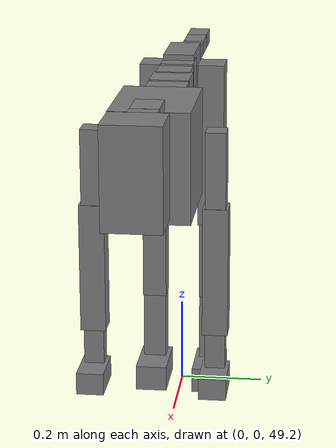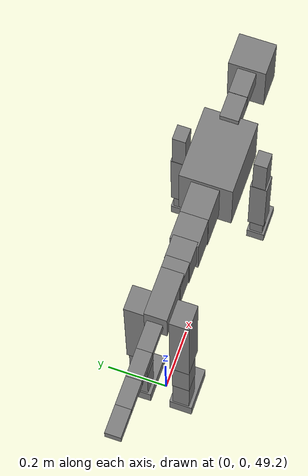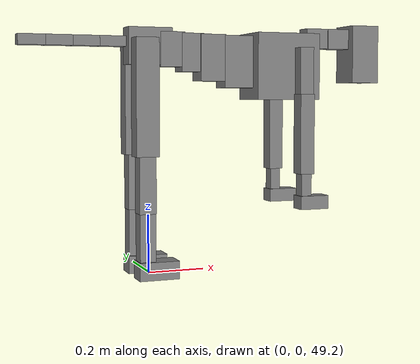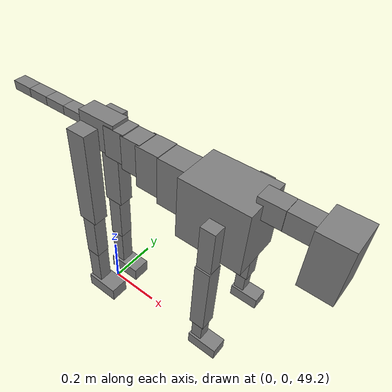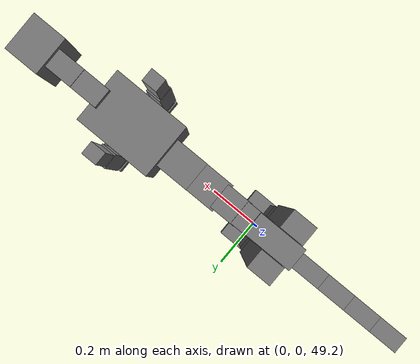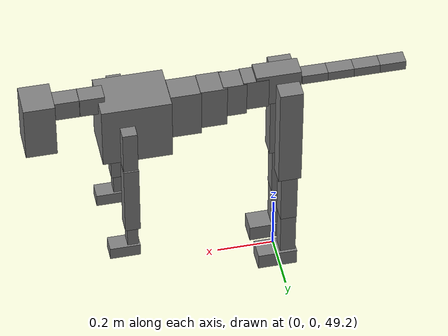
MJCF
<mujoco model="dog">

    <default>
        <joint armature="0.02" stiffness="1" damping="0.2" limited="true"/>
        <geom condim="3" friction="1 0.05 0.05" margin="0.01"/>
        <motor ctrllimited="true" ctrlrange="-1.0 1.0" forcelimited="true" gear="50"/>
    </default>

    <compiler inertiafromgeom="true" angle="radian"/>

    <option timestep="0.016" iterations="50" tolerance="1e-10" solver="Newton" jacobian="dense" cone="pyramidal"/>

    <size nconmax="20000" njmax="60000" nstack="5000000"/>
    <visual>
        <map force="0.1" zfar="30"/>
        <rgba haze="0.15 0.25 0.35 1"/>
        <quality shadowsize="2048"/>
        <global offwidth="800" offheight="800"/>
    </visual>

    <asset>
        <texture type="skybox" builtin="gradient" rgb1="0.3 0.5 0.7" rgb2="0 0 0" width="512" height="512"/>
        <texture name="texplane" type="2d" builtin="checker" rgb1=".2 .3 .4" rgb2=".1 0.15 0.2" width="512" height="512"
                 mark="cross" markrgb=".8 .8 .8"/>
        <texture name="texgeom" type="cube" builtin="flat" mark="cross" width="127" height="1278" rgb1="0.8 0.6 0.4"
                 rgb2="0.8 0.6 0.4" markrgb="1 1 1" random="0.01"/>

        <material name="matplane" reflectance="0.3" texture="texplane" texrepeat="1 1" texuniform="true"/>
        <material name="matgeom" texture="texgeom" texuniform="true" rgba="0.8 0.6 .4 1"/>
    </asset>

    <worldbody>
        <geom name="floor" pos="0 0 0" size="0 0 .25" type="plane" material="matplane" condim="3"/>

        <light directional="false" diffuse=".2 .2 .2" specular="0 0 0" pos="0 0 5" dir="0 0 -1" castshadow="false"/>
        <light mode="targetbodycom" target="torso" directional="false" diffuse=".8 .8 .8" specular="0.3 0.3 0.3"
               pos="0 0 4.0" dir="0 0 -1"/>

        <body name="root" pos="0 0 50">
            <freejoint name="root_1"/>
            <geom type="box" pos="0 0 -0.02" size="0.0774  0.0358  0.063" density="2030"/>

            <body name="spine1" pos="0.054 0 0">
                <joint name="spine1_y" axis="0 1 0" range="0 0.7" limited="true"/>
                <geom type="box" pos="0.02375 0 -0.03" size="0.04375  0.0375  0.05985" density="2030"/>

                <body name="spine2" pos="0.0612 0 0">
                    <joint name="spine2_y" axis="0 1 0" range="-0.15 0.15" limited="true"/>
                    <geom type="box" pos="0.03555  0  -0.04" size="0.04055  0.039  0.06615" density="2030"/>

                    <body name="spine3" pos="0.0730 0 0">
                        <joint name="spine3_y" axis="0 1 0" range="-0.15 0.15" limited="true"/>
                        <geom type="box" pos="0.03555  0  -0.057" size="0.04555  0.0445  0.081" density="2030"/>

                        <body name="spine4" pos="0.0780 0 0">
                            <joint name="spine4_y" axis="0 1 0" range="-0.15 0.15" limited="true"/>
                            <geom type="box" pos="0.05265  0  -0.07" size="0.05265  0.045  0.09135" density="2030"/>

                            <body name="torso" pos="0.1082 0 0">
                                <joint name="torso_y" axis="0 1 0" range="-0.15 0.15" limited="true"/>
                                <geom type="box" pos="0.11925  0  -0.085" size="0.11925  0.085  0.11745"
                                      density="2030"/>

                                <body name="neck1" pos="0.2160  0   0.0180">
                                    <joint name="neck1_y" axis="0 1 0" range="-1.2  -1" limited="true"/>
                                    <geom type="box" pos="0.0423  0  0" size="0.0423  0.03  0.036" density="2325"/>

                                    <body name="neck2" pos="0.0853  0  0">
                                        <joint name="neck2_y" axis="0 1 0" range="0.1  0" limited="true"/>
                                        <geom type="box" pos="0.0423  0  0" size="0.0423  0.03  0.036" density="2325"/>

                                        <body name="head" pos="0.0853  0  0">
                                            <joint name="head_y" axis="0 1 0" range="-0.3  -0.2" limited="true"/>
                                            <geom type="box" pos="0.0531  0  -0.055" size="0.0531  0.06  0.1044"
                                                  density="4030"/>

                                        </body>
                                    </body>
                                </body>

                                <body name="front_shoulder" pos="0.156  0   -0.0480">
                                    <joint name="front_shoulder_y" axis="0 1 0" range="-1 1.5" limited="true"/>
                                    <geom type="box" pos="0 0.13 -0.0680" size="0.0252  0.0215  0.0947" density="1158"/>
                                    <geom type="box" pos="0 -0.13 -0.0680" size="0.0252  0.0215  0.0947"
                                          density="1158"/>

                                    <body name="front_elbow" pos="0  0  -0.1360">
                                        <joint name="front_elbow_y" axis="0 1 0" range="-2 0" limited="true"/>
                                        <geom type="box" pos="0 0.13 -0.1391" size="0.0264  0.0270  0.1391"
                                              density="1081"/>
                                        <geom type="box" pos="0 -0.13 -0.1391" size="0.0264  0.0270  0.1391"
                                              density="1081"/>

                                        <body name="front_wrist" pos="0  0  -0.2782">
                                            <joint name="front_wrist_y" axis="0 1 0" range="-0.2 0" limited="true"/>
                                            <geom type="box" pos="0 0.13 -0.0460" size="0.0191  0.0212  0.0591"
                                                  density="1664"/>
                                            <geom type="box" pos="0 -0.13 -0.0460" size="0.0191  0.0212  0.0591"
                                                  density="1664"/>

                                            <body name="front_finger_end" pos="0  0  -0.0920">
                                                <joint name="front_finger_y" axis="0 1 0" range="-0.4 1"
                                                       limited="true"/>
                                                <geom type="box" pos="0.0289  0.13  -0.0085"
                                                      size="0.0529  0.0289  0.0235" density="1515"/>
                                                <geom type="box" pos="0.0289  -0.13  -0.0085"
                                                      size="0.0529  0.0289  0.0235" density="1515"/>

                                            </body>

                                        </body>
                                    </body>
                                </body>

                            </body>
                        </body>
                    </body>
                </body>
            </body>

            <body name="back_hip" pos="-0.03 0 -0.018">
                <joint name="back_hip_y" axis="0 1 0" range="-1.5 0.3" limited="true"/>
                <geom type="box" pos="0 0.07 -0.1761" size="0.0400  0.0314  0.1989" density="1154"/>
                <geom type="box" pos="0 -0.07 -0.1761" size="0.0400  0.0314  0.1989" density="1154"/>

                <body name="back_knee" pos="0  0  -0.3523">
                    <joint name="back_knee_y" axis="0 1 0" range="0 2.8" limited="true"/>
                    <geom type="box" pos="0 0.07 -0.0995" size="0.0289  0.0285  0.1151" density="1227"/>
                    <geom type="box" pos="0 -0.07 -0.0995" size="0.0289  0.0285  0.1151" density="1227"/>

                    <body name="back_ankle" pos="0  0  -0.1990">
                        <joint name="back_ankle_y" axis="0 1 0" range="-2.2 0" limited="true"/>
                        <geom type="box" pos="0 0.07 -0.0961" size="0.0274  0.0274  0.1073" density="1284"/>
                        <geom type="box" pos="0 -0.07 -0.0961" size="0.0274  0.0274  0.1073" density="1284"/>

                        <body name="back_toe_end" pos="0  0  -0.1921">
                            <joint name="back_toe_y" axis="0 1 0" range="-0.4 1" limited="true"/>
                            <geom type="box" pos="0.0378  0.07  -0.0157" size="0.0694  0.0378  0.0307" density="1515"/>
                            <geom type="box" pos="0.0378  -0.07  -0.0157" size="0.0694  0.0378  0.0307" density="1515"/>

                        </body>
                    </body>
                </body>
            </body>

            <body name="tail1" pos="-0.074 0 -0.006">
                <joint name="tail1_y" axis="0 1 0" range="-0.2 0.2" limited="true"/>
                <geom type="box" pos="-0.0536  0  0" size="0.045  0.025  0.0175" density="1587"/>

                <body name="tail2" pos="-0.09 0 0">
                    <joint name="tail2_y" axis="0 1 0" range="-0.2 0.2" limited="true"/>
                    <geom type="box" pos="-0.0536  0  0" size="0.045  0.025  0.0175" density="1587"/>

                    <body name="tail3" pos="-0.09 0 0">
                        <joint name="tail3_y" axis="0 1 0" range="-0.2 0.2" limited="true"/>
                        <geom type="box" pos="-0.0536  0  0" size="0.045  0.025  0.0175" density="1587"/>

                        <body name="tail4" pos="-0.09 0 0">
                            <joint name="tail4_y" axis="0 1 0" range="-0.2 0.2" limited="true"/>
                            <geom type="box" pos="-0.0536  0  0" size="0.045  0.025  0.0175" density="1587"/>

                        </body>
                    </body>
                </body>
            </body>
        </body>
    </worldbody>

    <actuator>
        <motor joint="spine1_y" forcerange="-150 150     "/>
        <motor joint="spine2_y" forcerange="-150 150     "/>
        <motor joint="spine3_y" forcerange="-150 150     "/>
        <motor joint="spine4_y" forcerange="-150 150     "/>
        <motor joint="torso_y" forcerange="-150 150     "/>
        <motor joint="neck1_y" forcerange="-100 100       "/>
        <motor joint="neck2_y" forcerange="-100 100       "/>
        <motor joint="head_y" forcerange="-150 150       "/>
        <motor joint="front_shoulder_y" forcerange="-134.77 108.60"/>
        <motor joint="front_elbow_y" forcerange="-148.06 148.10"/>
        <motor joint="front_wrist_y" forcerange="-109.57 59.88"/>
        <motor joint="front_finger_y" forcerange="-38.42 75.50"/>
        <motor joint="back_hip_y" forcerange="-231.92 386.32"/>
        <motor joint="back_knee_y" forcerange="-310.08 304.51"/>
        <motor joint="back_angle_y" forcerange="-136.34 202.04"/>
        <motor joint="back_toe_y" forcerange="-104.17 118.61"/>
        <motor joint="tail1_y" forcerange="-50 50     "/>
        <motor joint="tail2_y" forcerange="-50 50     "/>
        <motor joint="tail3_y" forcerange="-50 50     "/>
        <motor joint="tail4_y" forcerange="-50 50     "/>
    </actuator>
</mujoco>
